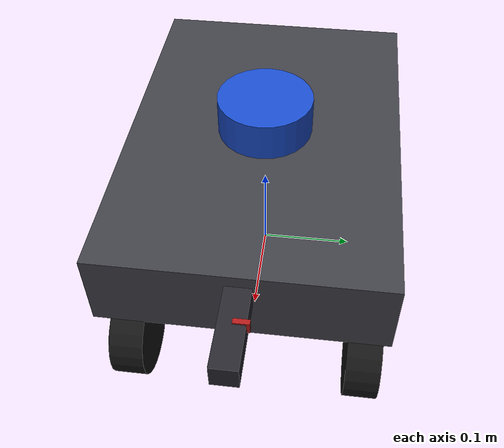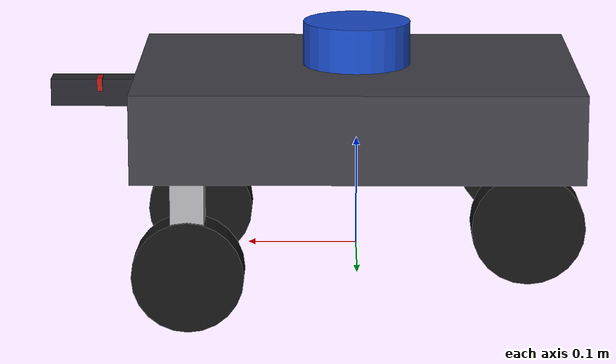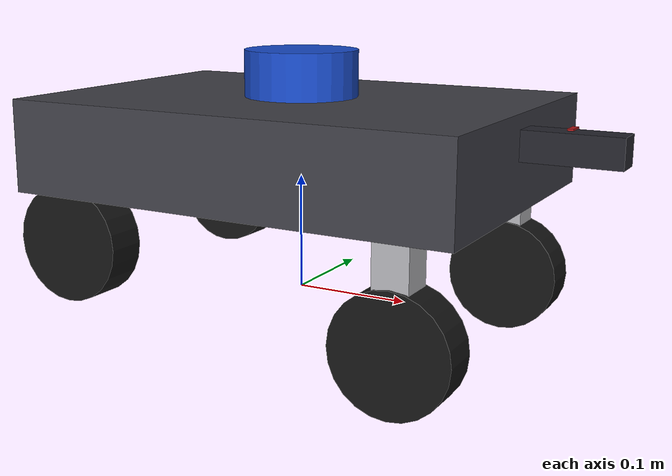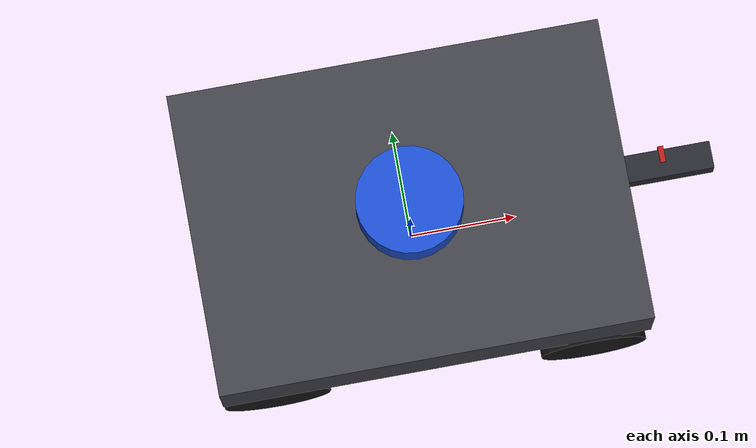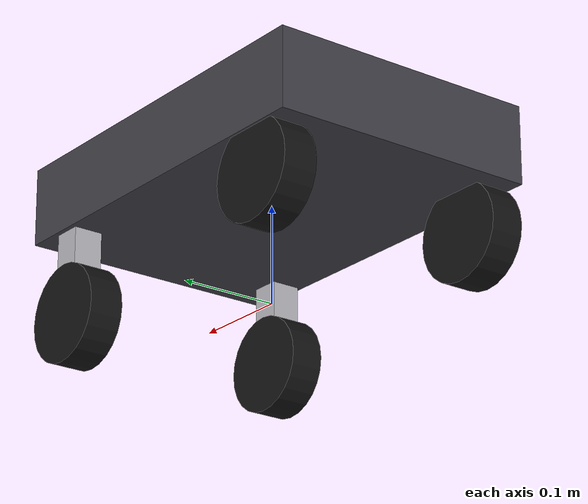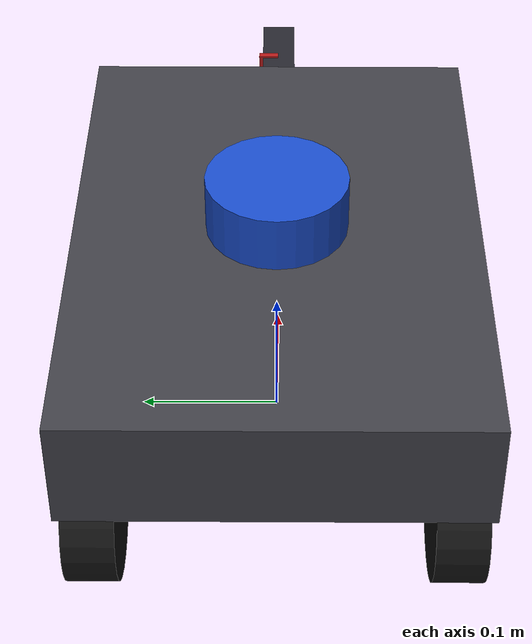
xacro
<?xml version="1.0"?>
<robot name="genbot" xmlns:xacro="http://www.ros.org/wiki/xacro">

  <material name="ChassisGray">
    <color rgba="0.25 0.25 0.28 1.0"/>
  </material>
  <material name="WheelBlack">
    <color rgba="0.08 0.08 0.08 1.0"/>
  </material>
  <material name="UprightSilver">
    <color rgba="0.70 0.70 0.72 1.0"/>
  </material>
  <material name="LidarBlue">
    <color rgba="0.10 0.30 0.80 1.0"/>
  </material>
  <material name="CameraDark">
    <color rgba="0.15 0.15 0.18 1.0"/>
  </material>
  <material name="LensRed">
    <color rgba="0.70 0.10 0.10 1.0"/>
  </material>

  <!-- ========== 机器人参数 ========== -->
  <xacro:property name="wheel_base"    value="0.300"/>
  <xacro:property name="wheel_track"   value="0.240"/>
  <xacro:property name="chassis_length" value="0.400"/>
  <xacro:property name="chassis_width"  value="0.280"/>
  <xacro:property name="chassis_height" value="0.080"/>
  <xacro:property name="clearance"      value="0.050"/>

  <xacro:property name="wheel_radius"   value="0.050"/>
  <xacro:property name="wheel_width"    value="0.035"/>

  <!-- ========== 惯性宏 ========== -->
  <xacro:macro name="inertia_box" params="mass x y z">
    <inertial>
      <mass value="${mass}"/>
      <inertia ixx="${(1/12)*mass*(y*y+z*z)}"
               iyy="${(1/12)*mass*(x*x+z*z)}"
               izz="${(1/12)*mass*(x*x+y*y)}"
               ixy="0" iyz="0" ixz="0"/>
    </inertial>
  </xacro:macro>

  <xacro:macro name="inertia_cyl" params="mass r l">
    <inertial>
      <mass value="${mass}"/>
      <inertia ixx="${(1/12)*mass*(3*r*r+l*l)}"
               iyy="${(1/12)*mass*(3*r*r+l*l)}"
               izz="${0.5*mass*r*r}"
               ixy="0" iyz="0" ixz="0"/>
    </inertial>
  </xacro:macro>

  <!-- ========== base_footprint ========== -->
  <link name="base_footprint"/>

  <!-- ========== 底盘 ========== -->
  <link name="base_link">
    <visual>
      <origin xyz="0 0 ${chassis_height/2}" rpy="0 0 0"/>
      <geometry><box size="${chassis_length} ${chassis_width} ${chassis_height}"/></geometry>
      <material name="ChassisGray"/>
    </visual>
    <collision>
      <origin xyz="0 0 ${chassis_height/2}" rpy="0 0 0"/>
      <geometry><box size="${chassis_length} ${chassis_width} ${chassis_height}"/></geometry>
    </collision>
    <xacro:inertia_box mass="4.0" x="${chassis_length}" y="${chassis_width}" z="${chassis_height}"/>
  </link>

  <joint name="base_footprint_joint" type="fixed">
    <parent link="base_footprint"/>
    <child link="base_link"/>
    <origin xyz="0 0 ${clearance + chassis_height/2}" rpy="0 0 0"/>
  </joint>

  <!--  前轮 — 左（转向节 + 转向关节 + 轮子 + 滚动关节）                -->

  <link name="front_left_steering_link">
    <visual>
      <origin xyz="0 0 0" rpy="0 0 0"/>
      <geometry><box size="0.030 0.030 0.080"/></geometry>
      <material name="UprightSilver"/>
    </visual>
    <collision>
      <origin xyz="0 0 0" rpy="0 0 0"/>
      <geometry><box size="0.030 0.030 0.080"/></geometry>
    </collision>
    <xacro:inertia_box mass="0.15" x="0.03" y="0.03" z="0.08"/>
  </link>

  <joint name="front_left_steering_joint" type="revolute">
    <parent link="base_link"/>
    <child link="front_left_steering_link"/>
    <origin xyz="${wheel_base/2} ${wheel_track/2} ${-chassis_height/2}" rpy="0 0 0"/>
    <axis xyz="0 0 1"/>
    <limit effort="10.0" velocity="3.0" lower="-0.6" upper="0.6"/>
    <dynamics damping="0.05" friction="0.01"/>
  </joint>

  <link name="front_left_wheel">
    <visual>
      <origin xyz="0 0 0" rpy="${pi/2} 0 0"/>
      <geometry><cylinder radius="${wheel_radius}" length="${wheel_width}"/></geometry>
      <material name="WheelBlack"/>
    </visual>
    <collision>
      <origin xyz="0 0 0" rpy="${pi/2} 0 0"/>
      <geometry><cylinder radius="${wheel_radius}" length="${wheel_width}"/></geometry>
    </collision>
    <xacro:inertia_cyl mass="0.3" r="${wheel_radius}" l="${wheel_width}"/>
  </link>

  <joint name="front_left_wheel_joint" type="continuous">
    <parent link="front_left_steering_link"/>
    <child link="front_left_wheel"/>
    <origin xyz="0 0 -0.045" rpy="0 0 0"/>
    <axis xyz="0 1 0"/>
    <limit effort="0.5" velocity="10.0"/>
    <dynamics damping="0.01" friction="0.01"/>
  </joint>

  <!--  前轮 — 右                                                      -->

  <link name="front_right_steering_link">
    <visual>
      <origin xyz="0 0 0" rpy="0 0 0"/>
      <geometry><box size="0.030 0.030 0.080"/></geometry>
      <material name="UprightSilver"/>
    </visual>
    <collision>
      <origin xyz="0 0 0" rpy="0 0 0"/>
      <geometry><box size="0.030 0.030 0.080"/></geometry>
    </collision>
    <xacro:inertia_box mass="0.15" x="0.03" y="0.03" z="0.08"/>
  </link>

  <joint name="front_right_steering_joint" type="revolute">
    <parent link="base_link"/>
    <child link="front_right_steering_link"/>
    <origin xyz="${wheel_base/2} ${-wheel_track/2} ${-chassis_height/2}" rpy="0 0 0"/>
    <axis xyz="0 0 1"/>
    <limit effort="10.0" velocity="3.0" lower="-0.6" upper="0.6"/>
    <dynamics damping="0.05" friction="0.01"/>
  </joint>

  <link name="front_right_wheel">
    <visual>
      <origin xyz="0 0 0" rpy="${pi/2} 0 0"/>
      <geometry><cylinder radius="${wheel_radius}" length="${wheel_width}"/></geometry>
      <material name="WheelBlack"/>
    </visual>
    <collision>
      <origin xyz="0 0 0" rpy="${pi/2} 0 0"/>
      <geometry><cylinder radius="${wheel_radius}" length="${wheel_width}"/></geometry>
    </collision>
    <xacro:inertia_cyl mass="0.3" r="${wheel_radius}" l="${wheel_width}"/>
  </link>

  <joint name="front_right_wheel_joint" type="continuous">
    <parent link="front_right_steering_link"/>
    <child link="front_right_wheel"/>
    <origin xyz="0 0 -0.045" rpy="0 0 0"/>
    <axis xyz="0 1 0"/>
    <limit effort="0.5" velocity="10.0"/>
    <dynamics damping="0.01" friction="0.01"/>
  </joint>

  <!--  后轮 — 左（仅驱动，不转向）                                    -->

  <link name="rear_left_wheel">
    <visual>
      <origin xyz="0 0 0" rpy="${pi/2} 0 0"/>
      <geometry><cylinder radius="${wheel_radius}" length="${wheel_width}"/></geometry>
      <material name="WheelBlack"/>
    </visual>
    <collision>
      <origin xyz="0 0 0" rpy="${pi/2} 0 0"/>
      <geometry><cylinder radius="${wheel_radius}" length="${wheel_width}"/></geometry>
    </collision>
    <xacro:inertia_cyl mass="0.3" r="${wheel_radius}" l="${wheel_width}"/>
  </link>

  <joint name="rear_left_wheel_joint" type="continuous">
    <parent link="base_link"/>
    <child link="rear_left_wheel"/>
    <origin xyz="${-wheel_base/2} ${wheel_track/2} ${-chassis_height/2}" rpy="0 0 0"/>
    <axis xyz="0 1 0"/>
    <limit effort="0.5" velocity="10.0"/>
    <dynamics damping="0.01" friction="0.01"/>
  </joint>

  <!--  后轮 — 右                                                      -->

  <link name="rear_right_wheel">
    <visual>
      <origin xyz="0 0 0" rpy="${pi/2} 0 0"/>
      <geometry><cylinder radius="${wheel_radius}" length="${wheel_width}"/></geometry>
      <material name="WheelBlack"/>
    </visual>
    <collision>
      <origin xyz="0 0 0" rpy="${pi/2} 0 0"/>
      <geometry><cylinder radius="${wheel_radius}" length="${wheel_width}"/></geometry>
    </collision>
    <xacro:inertia_cyl mass="0.3" r="${wheel_radius}" l="${wheel_width}"/>
  </link>

  <joint name="rear_right_wheel_joint" type="continuous">
    <parent link="base_link"/>
    <child link="rear_right_wheel"/>
    <origin xyz="${-wheel_base/2} ${-wheel_track/2} ${-chassis_height/2}" rpy="0 0 0"/>
    <axis xyz="0 1 0"/>
    <limit effort="0.5" velocity="10.0"/>
    <dynamics damping="0.01" friction="0.01"/>
  </joint>

  <!-- ========== RPLIDAR A1 ========== -->
  <link name="lidar_link">
    <visual>
      <origin xyz="0 0 0.025" rpy="0 0 0"/>
      <geometry><cylinder radius="0.049" length="0.050"/></geometry>
      <material name="LidarBlue"/>
    </visual>
    <collision>
      <origin xyz="0 0 0.025" rpy="0 0 0"/>
      <geometry><cylinder radius="0.049" length="0.050"/></geometry>
    </collision>
    <xacro:inertia_cyl mass="0.12" r="0.049" l="0.050"/>
  </link>

  <joint name="lidar_joint" type="fixed">
    <parent link="base_link"/>
    <child link="lidar_link"/>
    <origin xyz="0 0 ${chassis_height/2 + 0.030}" rpy="0 0 0"/>
  </joint>

  <!-- ========== Realsense D435 ========== -->
  <link name="camera_link">
    <visual>
      <origin xyz="0.045 0 0" rpy="0 0 0"/>
      <geometry><box size="0.090 0.025 0.025"/></geometry>
      <material name="CameraDark"/>
    </visual>
    <visual>
      <origin xyz="0.045 0.008 0.008" rpy="0 0 0"/>
      <geometry><box size="0.005 0.015 0.012"/></geometry>
      <material name="LensRed"/>
    </visual>
    <collision>
      <origin xyz="0.045 0 0" rpy="0 0 0"/>
      <geometry><box size="0.090 0.025 0.025"/></geometry>
    </collision>
    <xacro:inertia_box mass="0.15" x="0.090" y="0.025" z="0.025"/>
  </link>

  <joint name="camera_joint" type="fixed">
    <parent link="base_link"/>
    <child link="camera_link"/>
    <origin xyz="${chassis_length/2 - 0.010} 0 ${chassis_height/2 + 0.015}" rpy="0 0 0"/>
  </joint>

  <!-- ========== MPU6050 IMU ========== -->
  <link name="imu_link">
    <visual>
      <origin xyz="0 0 0" rpy="0 0 0"/>
      <geometry><box size="0.020 0.015 0.005"/></geometry>
      <material name="LensRed"/>
    </visual>
    <collision>
      <origin xyz="0 0 0" rpy="0 0 0"/>
      <geometry><box size="0.020 0.015 0.005"/></geometry>
    </collision>
    <xacro:inertia_box mass="0.005" x="0.020" y="0.015" z="0.005"/>
  </link>

  <joint name="imu_joint" type="fixed">
    <parent link="base_link"/>
    <child link="imu_link"/>
    <origin xyz="0 0 0" rpy="0 0 0"/>
  </joint>

  <xacro:include filename="$(find genbot_description)/urdf/genbot.gazebo.xacro"/>

</robot>
